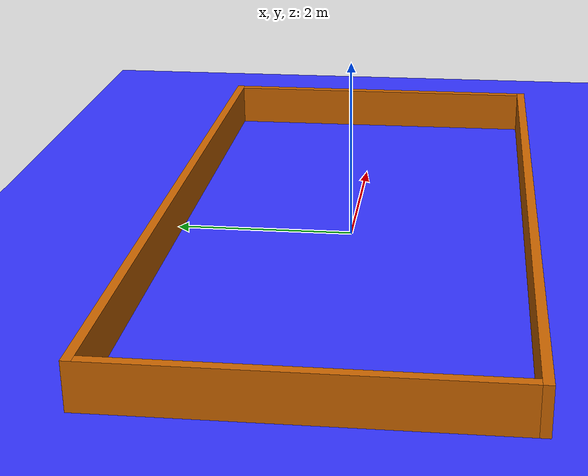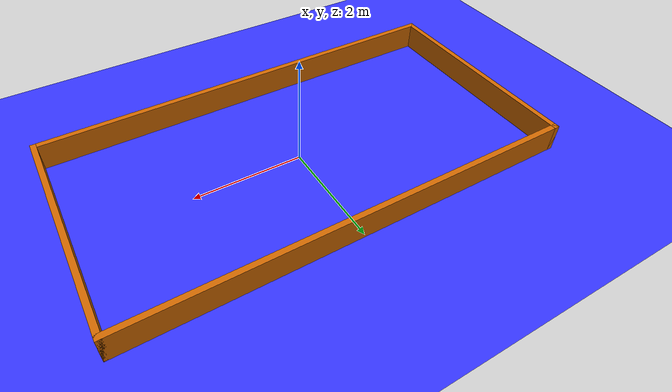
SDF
<?xml version="1.0" ?>
<sdf version="1.6">
  <world name="amr_world">

    <!-- Physics -->
    <physics type="ode">
      <max_step_size>0.001</max_step_size>
      <real_time_factor>1.0</real_time_factor>
      <real_time_update_rate>1000</real_time_update_rate>
    </physics>

    <!-- Sun Light -->
    <include>
      <uri>model://sun</uri>
    </include>

    <!-- Ground Plane (Made Blue!) -->
    <model name="ground_plane">
      <static>true</static>
      <link name="link">
        <collision name="collision">
          <geometry><plane><normal>0 0 1</normal><size>100 100</size></plane></geometry>
          <surface>
            <friction><ode><mu>100</mu><mu2>50</mu2></ode></friction>
          </surface>
        </collision>
        <visual name="visual">
          <cast_shadows>false</cast_shadows>
          <geometry><plane><normal>0 0 1</normal><size>100 100</size></plane></geometry>
          <material>
            <ambient>0.1 0.1 0.8 1</ambient>
            <diffuse>0.2 0.2 1.0 1</diffuse>
          </material>
        </visual>
      </link>
    </model>

    <!-- ==================== ARENA WALLS (8x4 meters) ==================== -->
    <!-- North Wall -->
    <model name="wall_north">
      <static>true</static>
      <pose>0 2 0.25 0 0 0</pose>
      <link name="link">
        <collision name="collision"><geometry><box><size>8.1 0.1 0.5</size></box></geometry></collision>
        <visual name="visual">
          <geometry><box><size>8.1 0.1 0.5</size></box></geometry>
          <material><ambient>0.6 0.3 0.0 1</ambient><diffuse>0.8 0.4 0.0 1</diffuse></material>
        </visual>
      </link>
    </model>

    <!-- South Wall -->
    <model name="wall_south">
      <static>true</static>
      <pose>0 -2 0.25 0 0 0</pose>
      <link name="link">
        <collision name="collision"><geometry><box><size>8.1 0.1 0.5</size></box></geometry></collision>
        <visual name="visual">
          <geometry><box><size>8.1 0.1 0.5</size></box></geometry>
          <material><ambient>0.6 0.3 0.0 1</ambient><diffuse>0.8 0.4 0.0 1</diffuse></material>
        </visual>
      </link>
    </model>

    <!-- East Wall -->
    <model name="wall_east">
      <static>true</static>
      <pose>4 0 0.25 0 0 1.5708</pose>
      <link name="link">
        <collision name="collision"><geometry><box><size>4.1 0.1 0.5</size></box></geometry></collision>
        <visual name="visual">
          <geometry><box><size>4.1 0.1 0.5</size></box></geometry>
          <material><ambient>0.6 0.3 0.0 1</ambient><diffuse>0.8 0.4 0.0 1</diffuse></material>
        </visual>
      </link>
    </model>

    <!-- West Wall -->
    <model name="wall_west">
      <static>true</static>
      <pose>-4 0 0.25 0 0 1.5708</pose>
      <link name="link">
        <collision name="collision"><geometry><box><size>4.1 0.1 0.5</size></box></geometry></collision>
        <visual name="visual">
          <geometry><box><size>4.1 0.1 0.5</size></box></geometry>
          <material><ambient>0.6 0.3 0.0 1</ambient><diffuse>0.8 0.4 0.0 1</diffuse></material>
        </visual>
      </link>
    </model>

  </world>
</sdf>
